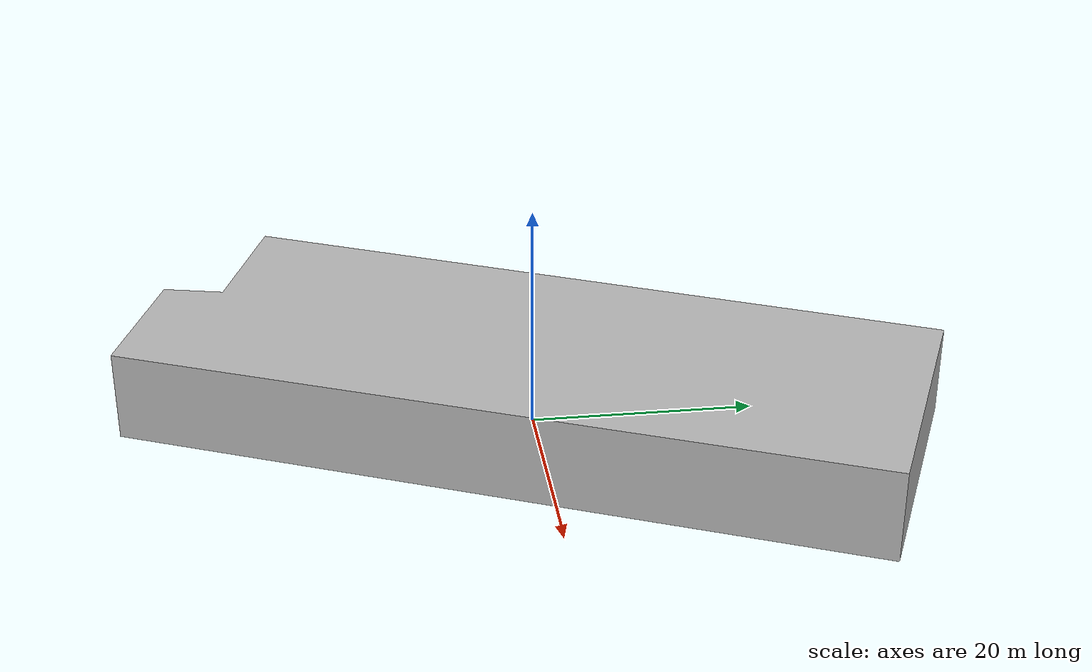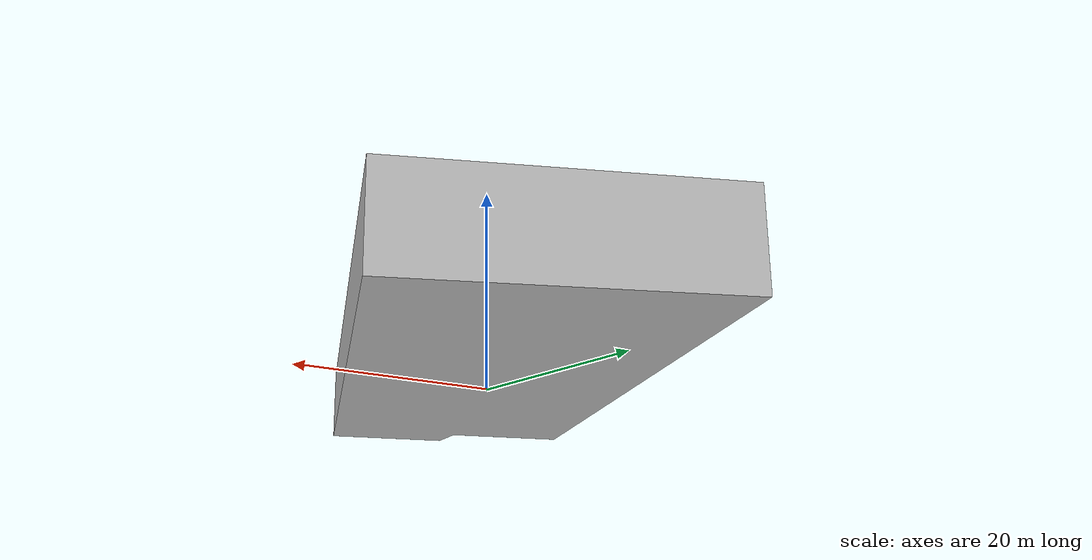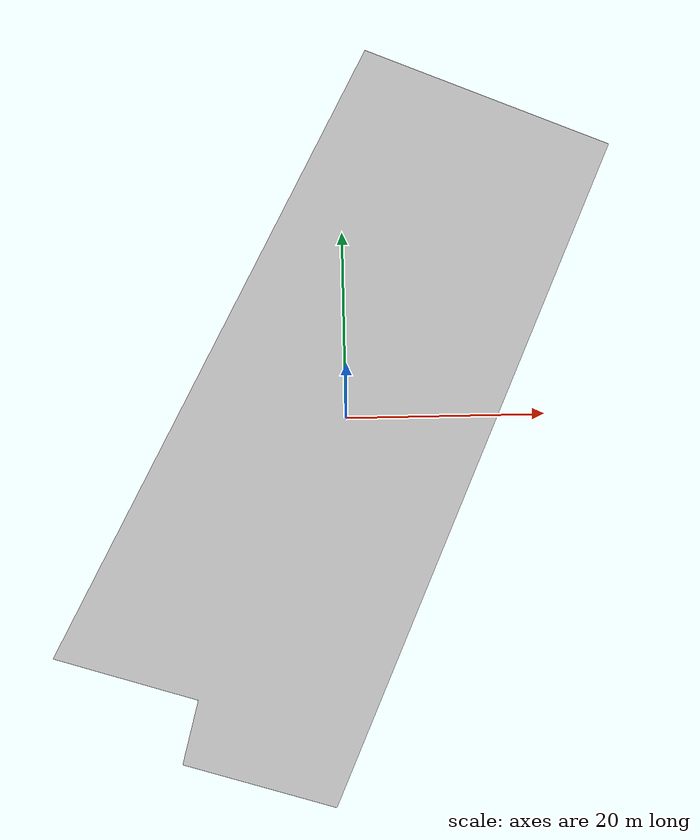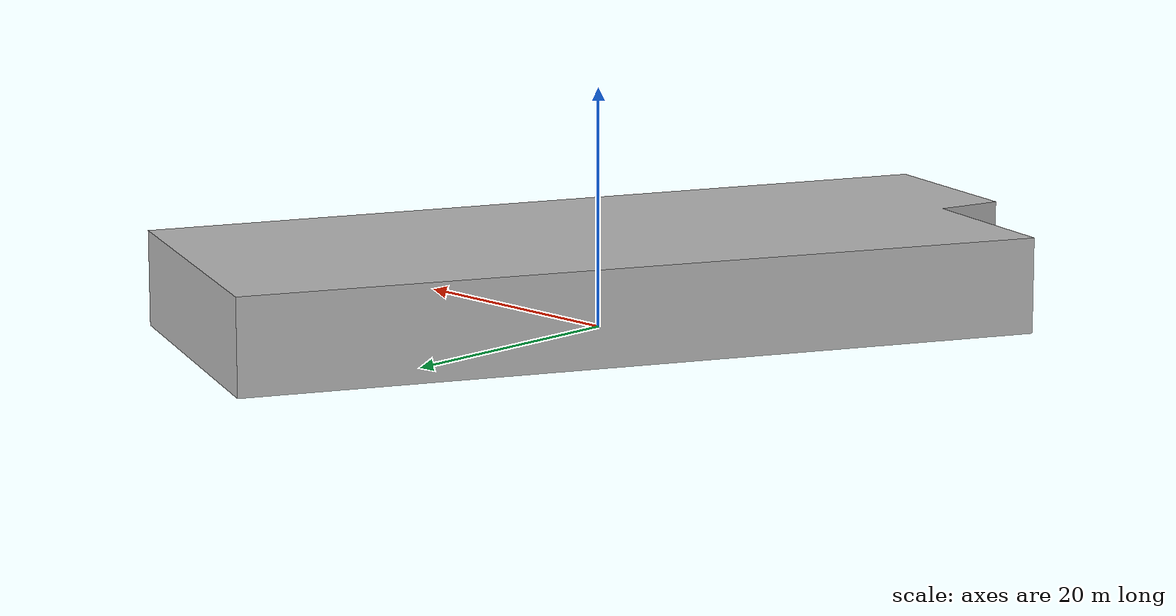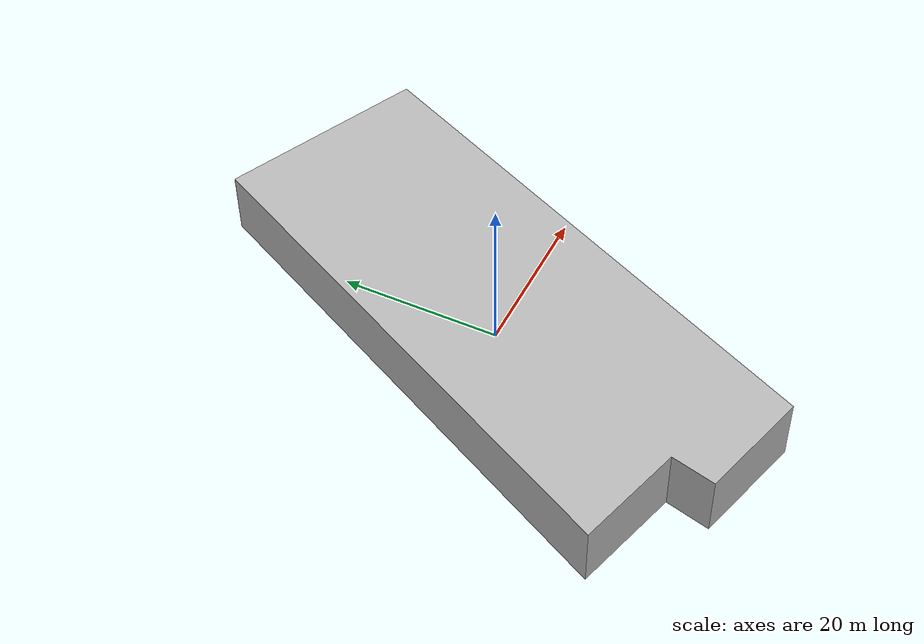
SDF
<?xml version="1.0" ?>
<sdf version="1.7">
  <model name="building_0653_actual_a_casa">
    <static>true</static>
    <link name="building_link">
      <visual name="building_visual">
        <geometry>
          <mesh>
            <uri>model://building_0653_actual_a_casa/meshes/construction_0653_actual_A_Casa_h8m.obj</uri>
          </mesh>
        </geometry>
      </visual>
    <collision name="building_collision">
      <geometry>
        <mesh>
          <uri>model://building_0653_actual_a_casa/meshes/construction_0653_actual_A_Casa_h8m.obj</uri>
        </mesh>
      </geometry>
    </collision>
    </link>
  </model>
</sdf>
